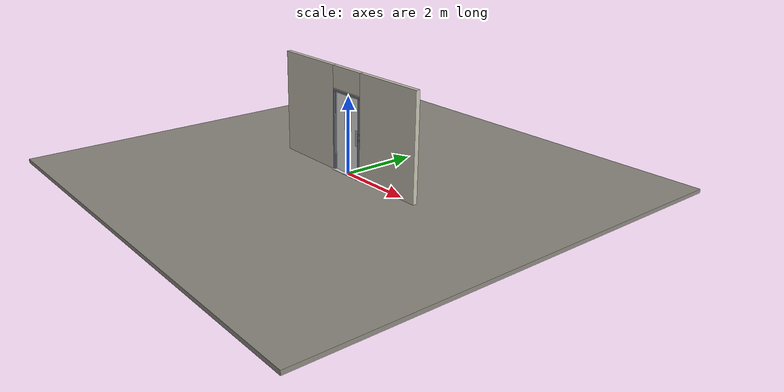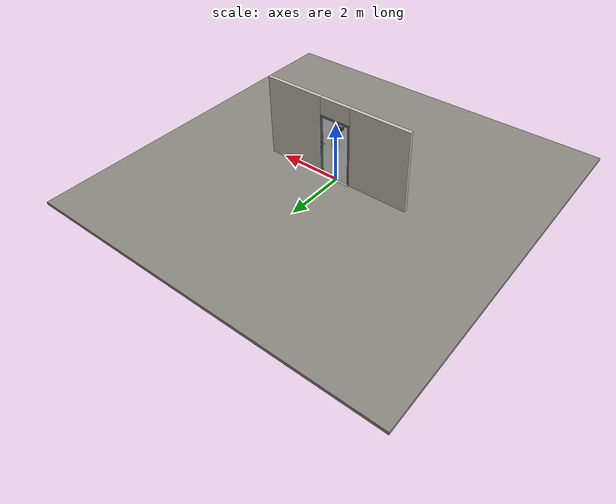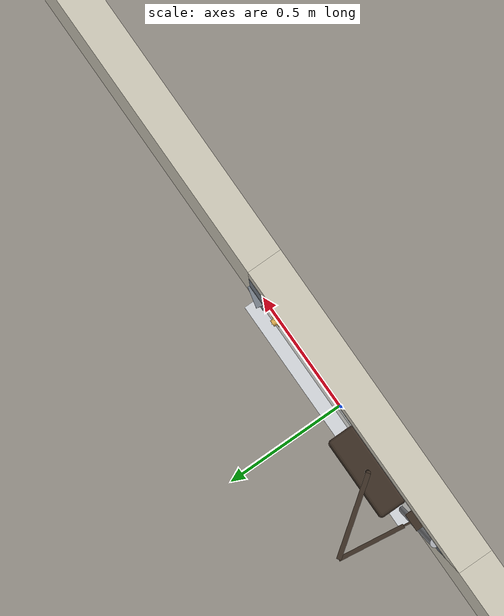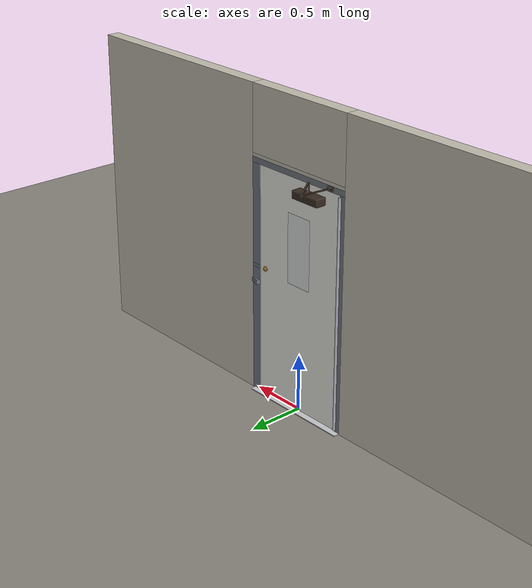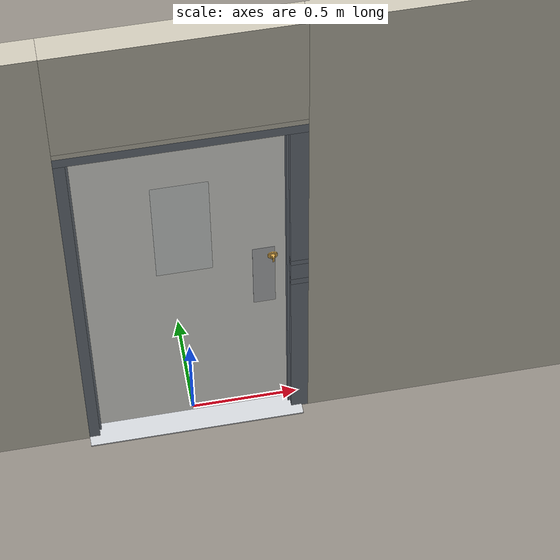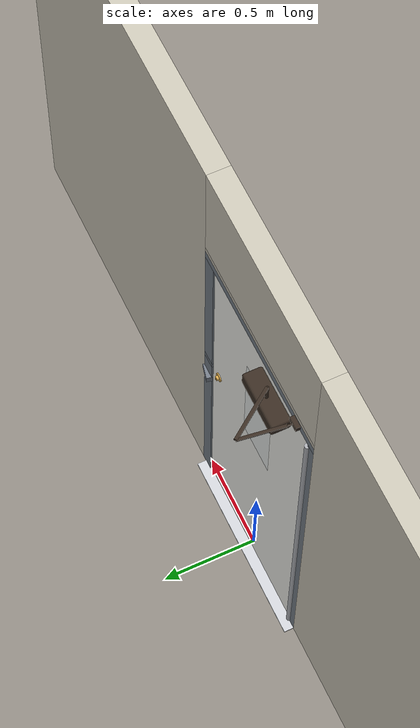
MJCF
<?xml version="1.0" ?>
<mujoco model="db0201_swing_single_full">
  <compiler angle="radian" meshdir="../../hardware" texturedir="../../textures" autolimits="true" inertiafromgeom="false"/>
  <option timestep="0.002" integrator="implicitfast" cone="elliptic" impratio="10" noslip_iterations="3">
    <flag multiccd="enable"/>
  </option>
  <size memory="16M"/>
  <default>
    <geom condim="4" solref="0.005 1" solimp="0.95 0.99 0.001"/>
    <joint solreflimit="0.005 1" solimplimit="0.95 0.99 0.001"/>
    <tendon solreflimit="0.005 1"/>
    <equality solref="0.002 1"/>
  </default>
  <visual>
    <headlight ambient="0.4 0.4 0.4" diffuse="0.7 0.7 0.7" specular="0.2 0.2 0.2"/>
    <quality shadowsize="4096"/>
    <map znear="0.01" zfar="60"/>
  </visual>
  <asset>
    <mesh name="closer_body_fdc4667657" file="closer_body_fdc4667657.obj"/>
    <mesh name="cyl_face_e9e5036966" file="cyl_face_e9e5036966.obj"/>
    <mesh name="thumbturn_eb5c9899a3" file="thumbturn_eb5c9899a3.obj"/>
    <material name="mat_floor" rgba="0.55 0.53 0.5 1" specular="0.2" shininess="0.15" reflectance="0"/>
    <material name="mat_wall" rgba="0.78 0.76 0.7 1" specular="0.2" shininess="0.1" reflectance="0"/>
    <material name="mat_leaf" rgba="0.93 0.93 0.91 1" specular="0.23" shininess="0.6" reflectance="0.02"/>
    <material name="mat_glass" rgba="0.85 0.92 0.95 0.25" specular="0.2" shininess="0.95" reflectance="0.1"/>
    <material name="mat_hinge" rgba="0.65 0.66 0.68 1" specular="0.74" shininess="0.5" reflectance="0.36"/>
    <material name="mat_op_stainless" rgba="0.75 0.76 0.77 1" specular="0.8" shininess="0.65" reflectance="0.4"/>
    <material name="mat_bolt" rgba="0.75 0.76 0.77 1" specular="0.8" shininess="0.65" reflectance="0.4"/>
    <material name="mat_deadbolt" rgba="0.85 0.66 0.3 1" specular="0.8" shininess="0.75" reflectance="0.4"/>
    <material name="mat_frame" rgba="0.45 0.48 0.52 1" specular="0.32" shininess="0.6" reflectance="0.08"/>
    <material name="mat_seal" rgba="0.1 0.1 0.1 1" specular="0.2" shininess="0.1" reflectance="0"/>
    <material name="mat_threshold" rgba="0.8 0.81 0.83 1" specular="0.8" shininess="0.6" reflectance="0.4"/>
    <material name="mat_closer" rgba="0.22 0.17 0.13 1" specular="0.8" shininess="0.6" reflectance="0.4"/>
    <texture name="skybox" type="skybox" builtin="gradient" rgb1="0.6 0.7 0.85" rgb2="0.9 0.92 0.95" width="256" height="256"/>
  </asset>
  <worldbody>
    <light name="sun" pos="1.5 -2.5 4" dir="-0.3 0.5 -0.8" directional="true" diffuse="0.8 0.8 0.8" specular="0.3 0.3 0.3" castshadow="true"/>
    <light name="fill" pos="-1.5 2.5 3" dir="0.3 -0.5 -0.7" directional="true" diffuse="0.35 0.35 0.4" castshadow="false"/>
    <camera name="robot_view" pos="0 -2.570688 1.734312" xyaxes="1 0 0 0 0.26963 0.962964" fovy="52"/>
    <camera name="far_view" pos="0 2.513687 1.734312" xyaxes="-1 0 0 0 -0.26963 0.962964" fovy="52"/>
    <camera name="iso" pos="1.932062 -2.163938 2.141063" xyaxes="0.741536 0.670913 0 -0.242917 0.268487 0.932151" fovy="46"/>
    <camera name="detail_handle" pos="0.5335 -0.8285 1.296" xyaxes="0.97561 0.219512 0 -0.070934 0.315262 0.94635" fovy="38"/>
    <geom name="floor" type="box" size="6 6 0.05" pos="0 0 -0.05" material="mat_floor" group="0" contype="1" conaffinity="1" friction="0.8 0.005 0.0001" density="2400"/>
    <geom name="wall_left" type="box" size="0.99475 0.0575 1.35" pos="-1.50525 -0.0285 1.35" material="mat_wall" group="0" contype="1" conaffinity="1" friction="0.6 0.005 0.0001" density="800"/>
    <geom name="wall_right" type="box" size="0.97975 0.0575 1.35" pos="1.52025 -0.0285 1.35" material="mat_wall" group="0" contype="1" conaffinity="1" friction="0.6 0.005 0.0001" density="800"/>
    <geom name="wall_header" type="box" size="0.5255 0.0575 0.2875" pos="0.015 -0.0285 2.4125" material="mat_wall" group="0" contype="1" conaffinity="1" friction="0.6 0.005 0.0001" density="800"/>
    <geom name="leaf_deadbolt_strike_b" type="box" size="0.0155 0.003 0.0005" pos="0.46 0 1.1375" quat="-0.5 -0.5 0.5 0.5" material="mat_deadbolt" group="1" contype="0" conaffinity="0" density="7800"/>
    <geom name="leaf_deadbolt_strike_l" type="box" size="0.003 0.0155 0.0005" pos="0.46 0.0125 1.156" quat="-0.5 -0.5 0.5 0.5" material="mat_deadbolt" group="1" contype="0" conaffinity="0" density="7800"/>
    <geom name="leaf_deadbolt_strike_t" type="box" size="0.0155 0.003 0.0005" pos="0.46 0 1.1745" quat="-0.5 -0.5 0.5 0.5" material="mat_deadbolt" group="1" contype="0" conaffinity="0" density="7800"/>
    <geom name="leaf_deadbolt_strike_r" type="box" size="0.003 0.0155 0.0005" pos="0.46 -0.0125 1.156" quat="-0.5 -0.5 0.5 0.5" material="mat_deadbolt" group="1" contype="0" conaffinity="0" density="7800"/>
    <geom name="jamb_hinge" type="box" size="0.025 0.0575 1.0225" pos="-0.4855 -0.0285 1.0225" material="mat_frame" group="0" contype="1" conaffinity="1" friction="0.6 0.005 0.0001" density="300"/>
    <geom name="strike_1016_wall_n" type="box" size="0.04 0.03925 0.019" pos="0.5005 -0.04675 1.016" material="mat_frame" group="0" contype="1" conaffinity="1" friction="0.6 0.005 0.0001" density="300"/>
    <geom name="strike_1016_wall_p" type="box" size="0.04 0.008 0.019" pos="0.5005 0.0155 1.016" material="mat_frame" group="0" contype="1" conaffinity="1" friction="0.6 0.005 0.0001" density="300"/>
    <geom name="strike_1016_ramp" type="box" size="0.04 0.015403 0.019" pos="0.502954 0.029411 1.016" quat="0.993439 0 0 -0.114365" material="mat_frame" group="0" contype="1" conaffinity="1" friction="0.12 0.005 0.0001" density="300"/>
    <geom name="strike_1016_ramp_n" type="box" size="0.04 0.015403 0.019" pos="0.502954 -0.017411 1.016" quat="0.993439 0 0 0.114365" material="mat_frame" group="0" contype="1" conaffinity="1" friction="0.12 0.005 0.0001" density="300"/>
    <geom name="strike_1016_back" type="box" size="0.035 0.0075 0.019" pos="0.5055 0 1.016" material="mat_frame" group="0" contype="1" conaffinity="1" friction="0.6 0.005 0.0001" density="300"/>
    <geom name="strike_1156_wall_n" type="box" size="0.04 0.03825 0.0155" pos="0.5005 -0.04775 1.156" material="mat_frame" group="0" contype="1" conaffinity="1" friction="0.6 0.005 0.0001" density="300"/>
    <geom name="strike_1156_wall_p" type="box" size="0.04 0.00975 0.0155" pos="0.5005 0.01925 1.156" material="mat_frame" group="0" contype="1" conaffinity="1" friction="0.6 0.005 0.0001" density="300"/>
    <geom name="strike_1156_back" type="box" size="0.0253 0.0095 0.0155" pos="0.5152 0 1.156" material="mat_frame" group="0" contype="1" conaffinity="1" friction="0.6 0.005 0.0001" density="300"/>
    <geom name="jamb_strike_0" type="box" size="0.04 0.0575 0.4985" pos="0.5005 -0.0285 0.4985" material="mat_frame" group="0" contype="1" conaffinity="1" friction="0.6 0.005 0.0001" density="300"/>
    <geom name="jamb_strike_1" type="box" size="0.04 0.0575 0.05275" pos="0.5005 -0.0285 1.08775" material="mat_frame" group="0" contype="1" conaffinity="1" friction="0.6 0.005 0.0001" density="300"/>
    <geom name="jamb_strike_2" type="box" size="0.04 0.0575 0.43675" pos="0.5005 -0.0285 1.60825" material="mat_frame" group="0" contype="1" conaffinity="1" friction="0.6 0.005 0.0001" density="300"/>
    <geom name="jamb_head" type="box" size="0.5255 0.0575 0.025" pos="0.015 -0.0285 2.07" material="mat_frame" group="0" contype="1" conaffinity="1" friction="0.6 0.005 0.0001" density="300"/>
    <geom name="head_stud" type="box" size="0.5255 0.0575 0.015" pos="0.015 -0.0285 2.11" material="mat_wall" group="0" contype="1" conaffinity="1" friction="0.6 0.005 0.0001" density="500"/>
    <geom name="stop_hinge" type="box" size="0.0055 0.016 1.0225" pos="-0.455 -0.0385 1.0225" material="mat_frame" group="0" contype="1" conaffinity="1" friction="0.6 0.005 0.0001" density="300"/>
    <geom name="stop_strike" type="box" size="0.0055 0.016 1.0225" pos="0.455 -0.0385 1.0225" material="mat_frame" group="0" contype="1" conaffinity="1" friction="0.6 0.005 0.0001" density="300"/>
    <geom name="stop_head" type="box" size="0.4605 0.016 0.0055" pos="0 -0.0385 2.0395" material="mat_frame" group="0" contype="1" conaffinity="1" friction="0.6 0.005 0.0001" density="300"/>
    <geom name="seal_hinge" type="box" size="0.004 0.002 1.0225" pos="-0.4575 -0.024 1.0225" material="mat_seal" group="1" contype="0" conaffinity="0" density="1100"/>
    <geom name="seal_strike" type="box" size="0.004 0.002 1.0225" pos="0.4575 -0.024 1.0225" material="mat_seal" group="1" contype="0" conaffinity="0" density="1100"/>
    <geom name="seal_head" type="box" size="0.4405 0.002 0.008" pos="0 -0.024 2.033" material="mat_seal" group="1" contype="0" conaffinity="0" density="1100"/>
    <geom name="threshold" type="box" size="0.5105 0.1075 0.004" pos="0 -0.0285 0.004" material="mat_threshold" group="0" contype="1" conaffinity="1" friction="0.6 0.005 0.0001" density="2700"/>
    <geom name="closer_bracket" type="box" size="0.03 0.012 0.014" pos="-0.3605 0.041 2.075" material="mat_closer" group="1" contype="0" conaffinity="0" density="2700"/>
    <site name="approach_point" pos="0 -1.5 0" quat="1 0 0 0" size="0.05" rgba="0.2 0.9 0.2 0.5" group="4"/>
    <site name="goal_point" pos="0 1.5 0" quat="1 0 0 0" size="0.05" rgba="0.2 0.9 0.2 0.5" group="4"/>
    <site name="door_plane_center" pos="0 0 1.0225" quat="1 0 0 0" size="0.02" rgba="0.2 0.9 0.2 0.5" group="4"/>
    <body name="leaf" pos="-0.4605 0 0">
      <inertial pos="0.410334 0.015895 1.215042" mass="62.012378" quat="-0.471928 0.497079 0.515031 0.514722" diaginertia="4.080802708 25.601284018 29.580033137"/>
      <joint name="leaf_hinge" type="hinge" axis="0 0 1" pos="0.003 0.029 0" limited="true" range="0 1.745329" solreflimit="0.02 1" damping="12.25611" frictionloss="2.239149" stiffness="15.8391" springref="-1.756413" armature="0.02"/>
      <geom name="leaf_slab" type="box" size="0.457 0.022 1.016" pos="0.46 0 1.025" material="mat_leaf" group="0" contype="1" conaffinity="1" friction="0.4 0.005 0.0001" density="1"/>
      <geom name="leaf_glass_0" type="box" size="0.125 0.0228 0.3048" pos="0.46 0 1.4314" material="mat_glass" group="1" contype="0" conaffinity="0" density="1"/>
      <geom name="hinge_continuous" type="cylinder" size="0.0136 1.006" pos="0.003 0.029 1.025" material="mat_hinge" group="1" contype="0" conaffinity="0" density="2700"/>
      <geom name="leaf_push_plate_n" type="box" size="0.05 0.0008 0.2" pos="0.812 -0.0228 1.016" material="mat_op_stainless" group="1" contype="0" conaffinity="0" density="7900"/>
      <geom name="leaf_deadbolt_faceplate" type="box" size="0.0006 0.014 0.0245" pos="0.9164 0 1.156" material="mat_deadbolt" group="1" contype="0" conaffinity="0" density="8500"/>
      <geom name="leaf_deadbolt_cylinder_face" type="mesh" mesh="cyl_face_e9e5036966" pos="0.852 0.022 1.156" quat="-0.707107 0.707107 0 0" material="mat_deadbolt" group="1" contype="0" conaffinity="0" density="7100"/>
      <geom name="closer_body" type="mesh" mesh="closer_body_fdc4667657" pos="0.3 0.022 1.952" quat="-0.707107 0.707107 0 0" material="mat_closer" group="1" contype="0" conaffinity="0" density="2000"/>
      <geom name="closer_body_col" type="box" size="0.145 0.05 0.035" pos="0.3 0.072 1.952" material="mat_closer" group="3" contype="1" conaffinity="1" rgba="0.8 0.3 0.3 0.25" friction="0.6 0.005 0.0001" density="2000"/>
      <geom name="closer_pinion_shaft" type="cylinder" size="0.008 0.0615" pos="0.3 0.072 2.0135" material="mat_closer" group="1" contype="0" conaffinity="0" density="2700"/>
      <site name="leaf_push_plate_push_n" pos="0.812 -0.022 1.016" quat="1 0 0 0" size="0.012" rgba="0.2 0.9 0.2 0.5" group="4"/>
      <site name="leaf_edge_mid" pos="0.917 0 1.016" quat="1 0 0 0" size="0.02" rgba="0.2 0.9 0.2 0.5" group="4"/>
      <body name="leaf_latch_bolt" pos="0.917 0 1.016">
        <inertial pos="-0.012 0 0" mass="0.030762" quat="0 0 0.707107 0.707107" diaginertia="0.000000526 0.000002949 0.000002949"/>
        <joint name="leaf_latch_bolt_slide" type="slide" axis="-1 0 0" limited="true" range="0 0.006" damping="2" frictionloss="0.3" stiffness="3000" springref="-0.004" armature="0.1"/>
        <geom name="leaf_latch_bolt_capsule" type="capsule" size="0.006 0.012" pos="-0.012 0 0" quat="0.707107 0 0.707107 0" material="mat_bolt" group="0" contype="1" conaffinity="1" friction="0.2 0.005 0.0001" density="8500"/>
      </body>
      <body name="leaf_deadbolt" pos="0.917 0 1.156">
        <inertial pos="-0.0023 0 0" mass="0.18836" quat="0 0 0.707107 0.707107" diaginertia="0.000013829 0.000052194 0.000057986"/>
        <joint name="leaf_deadbolt_slide" type="slide" axis="-1 0 0" limited="true" range="0 0.0254" damping="5" frictionloss="1.5" armature="0.1"/>
        <geom name="leaf_deadbolt_box" type="box" size="0.0277 0.008 0.0125" pos="-0.0023 0 0" material="mat_deadbolt" group="0" contype="1" conaffinity="1" friction="0.3 0.005 0.0001" density="8500"/>
      </body>
      <body name="leaf_deadbolt_thumbturn" pos="0.852 -0.022 1.156">
        <inertial pos="0 -0.012928 0" mass="0.178946" quat="0.5 0.5 0.5 0.5" diaginertia="0.000026045 0.000026215 0.000032438"/>
        <joint name="leaf_deadbolt_thumbturn_hinge" type="hinge" axis="0 1 0" limited="true" range="0 1.5708" damping="0.05" frictionloss="0.35" armature="0.005"/>
        <geom name="leaf_deadbolt_thumbturn_mesh" type="mesh" mesh="thumbturn_eb5c9899a3" pos="0 0 0" quat="0.707107 0.707107 0 0" material="mat_deadbolt" group="0" contype="1" conaffinity="1" friction="0.6 0.005 0.0001" density="7100"/>
        <geom name="leaf_deadbolt_thumbturn_col" type="box" size="0.006 0.012 0.016" pos="0 -0.02 0" material="mat_deadbolt" group="3" contype="1" conaffinity="1" rgba="0.8 0.3 0.3 0.25" friction="0.6 0.005 0.0001" density="7100"/>
      </body>
      <body name="closer_arm_main" pos="0.3 0.072 2.075" quat="0.454107 0 0 0.890947">
        <inertial pos="0.14 0 0" mass="0.12096" quat="1 0 0 0" diaginertia="0.000003588 0.00079128 0.000792852"/>
        <joint name="closer_pinion" type="hinge" axis="0 0 1" limited="false" damping="0.01" armature="0.002"/>
        <geom name="closer_arm_main_geom" type="box" size="0.14 0.008 0.005" pos="0.14 0 0" material="mat_closer" group="1" contype="0" conaffinity="0" density="2700"/>
        <body name="closer_arm_fore" pos="0.28 0 0" quat="-0.373215 0 0 -0.927745">
          <inertial pos="0.128088 0 0" mass="0.076531" quat="1 0 0 0" diaginertia="0.000001771 0.000437665 0.000438201"/>
          <joint name="closer_elbow" type="hinge" axis="0 0 1" limited="false" damping="0.01" armature="0.002"/>
          <geom name="closer_arm_fore_geom" type="box" size="0.1125 0.007 0.004" pos="0.1125 0 0" material="mat_closer" group="1" contype="0" conaffinity="0" density="2700"/>
          <geom name="closer_fore_neck" type="box" size="0.0175 0.003 0.003" pos="0.2425 0 0" material="mat_closer" group="1" contype="0" conaffinity="0" density="2700"/>
          <geom name="closer_fore_pivot" type="cylinder" size="0.005 0.012" pos="0.26 0 0" material="mat_closer" group="1" contype="0" conaffinity="0" density="2700"/>
        </body>
      </body>
    </body>
  </worldbody>
  <equality>
    <joint name="leaf_deadbolt_couple" joint1="leaf_deadbolt_slide" joint2="leaf_deadbolt_thumbturn_hinge" polycoef="0 0.01617 0 0 0" active="true"/>
    <connect name="closer_arm_connect" body1="closer_arm_fore" body2="world" anchor="0.26 0 0" active="true"/>
  </equality>
  <contact>
    <exclude body1="leaf_deadbolt" body2="leaf_deadbolt_thumbturn"/>
    <exclude body1="closer_arm_main" body2="leaf"/>
    <exclude body1="closer_arm_fore" body2="leaf"/>
    <exclude body1="closer_arm_main" body2="closer_arm_fore"/>
  </contact>
  <sensor>
    <jointpos name="leaf_hinge_pos" joint="leaf_hinge"/>
    <jointvel name="leaf_hinge_vel" joint="leaf_hinge"/>
    <jointpos name="leaf_latch_bolt_slide_pos" joint="leaf_latch_bolt_slide"/>
    <jointvel name="leaf_latch_bolt_slide_vel" joint="leaf_latch_bolt_slide"/>
    <jointpos name="leaf_deadbolt_slide_pos" joint="leaf_deadbolt_slide"/>
    <jointvel name="leaf_deadbolt_slide_vel" joint="leaf_deadbolt_slide"/>
    <jointpos name="leaf_deadbolt_thumbturn_hinge_pos" joint="leaf_deadbolt_thumbturn_hinge"/>
    <jointvel name="leaf_deadbolt_thumbturn_hinge_vel" joint="leaf_deadbolt_thumbturn_hinge"/>
  </sensor>
</mujoco>
